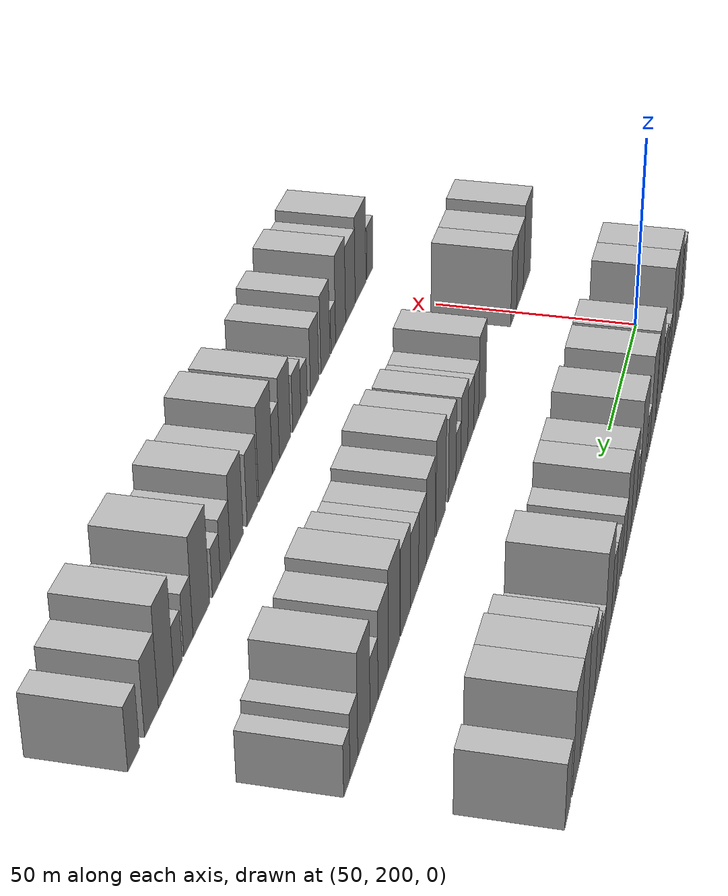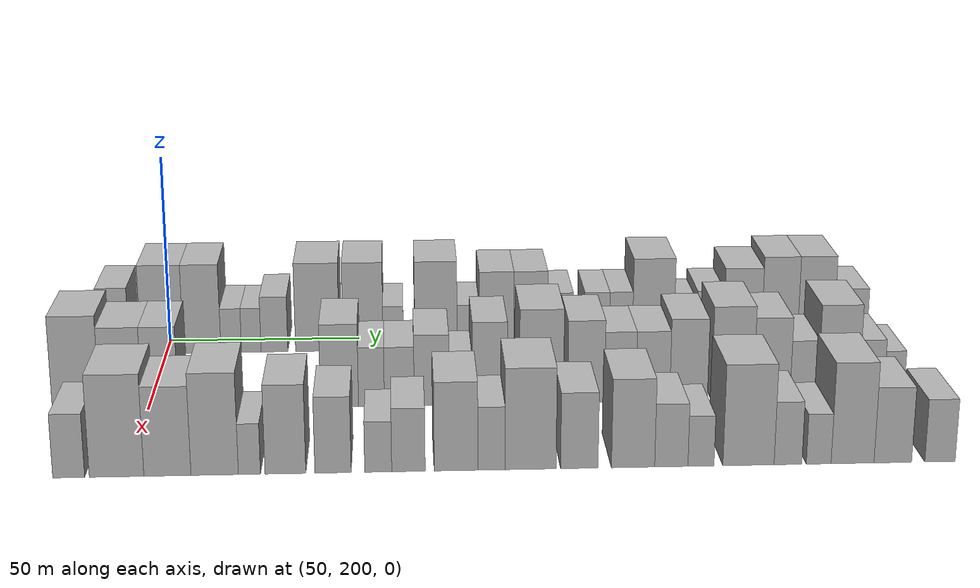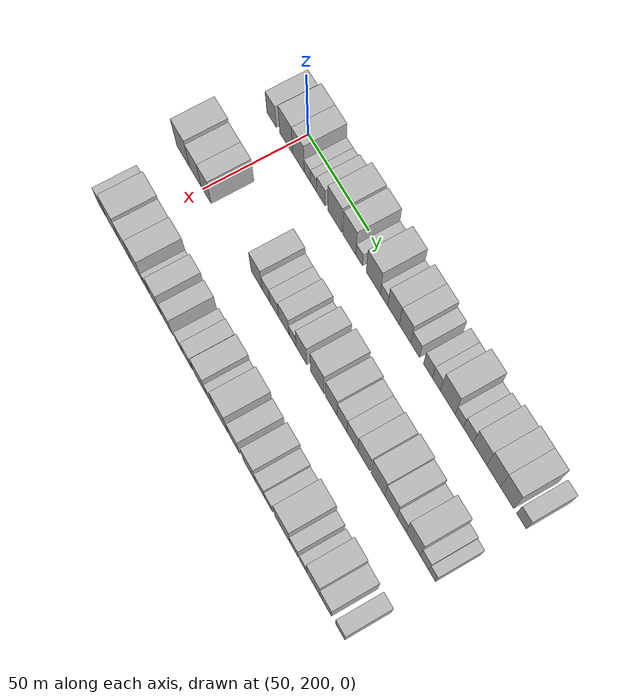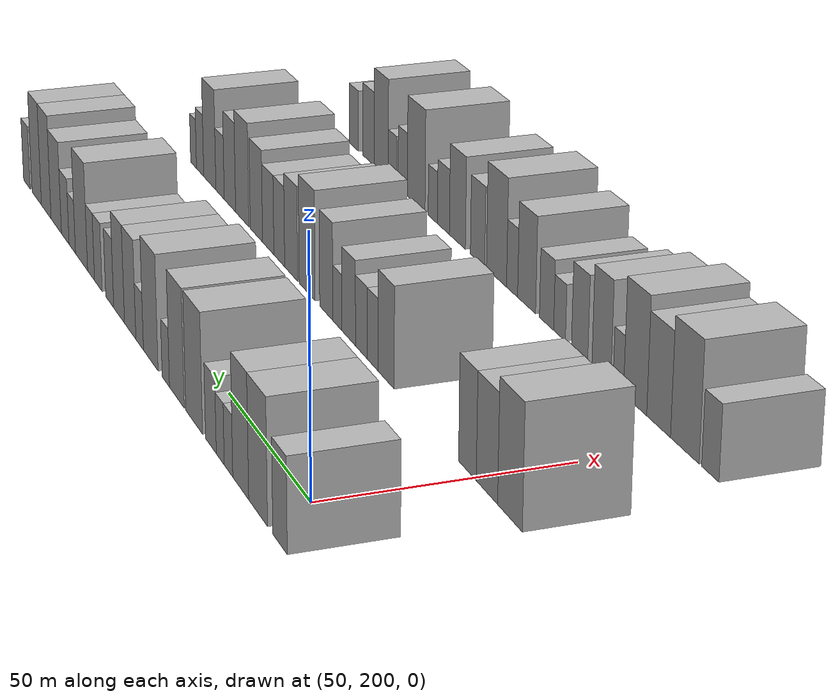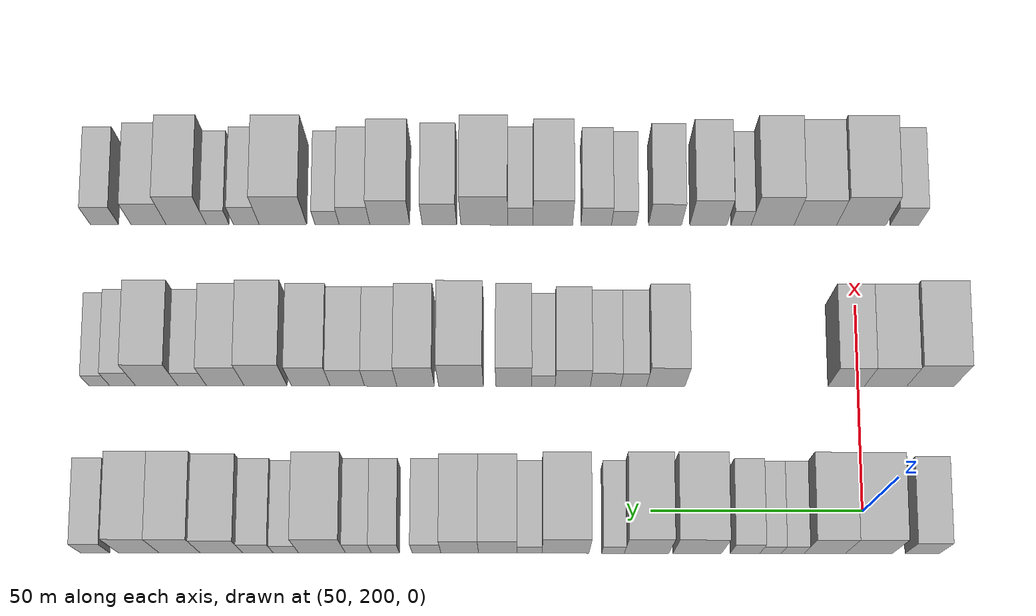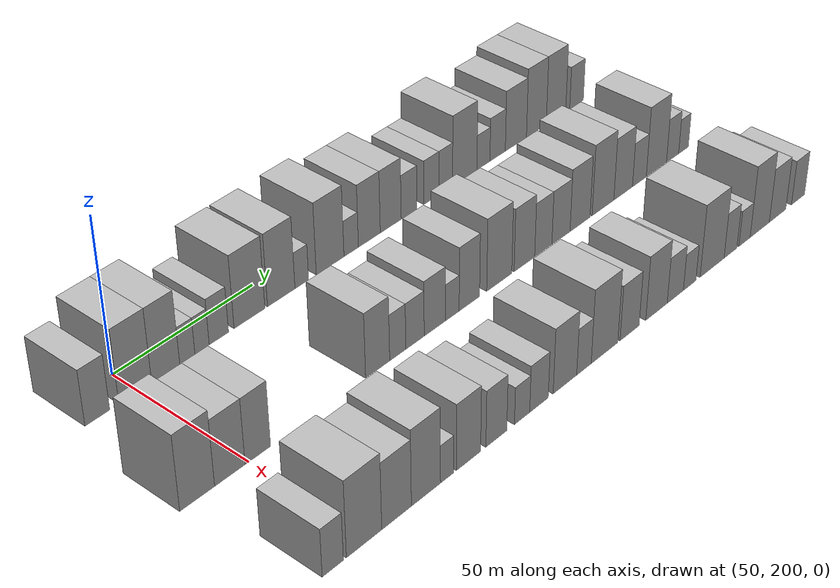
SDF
<sdf version="1.6">
 <world name="default">
  <model name="building_67">
   <static>1</static>
   <pose>50.0000 186.3931 0 0.000000 0.000000 0.000000</pose>
   <link name="link">
    <pose>0 0 9.00 0 0 0</pose>
    <collision name="collision"><geometry><box><size>20.0000 8.0722 18.0000</size></box></geometry></collision>
    <visual name="visual">
     <cast_shadows>0</cast_shadows>
     <geometry><box><size>20.0000 8.0722 18.0000</size></box></geometry>
     <material>
      <script>
       <uri>model://HANNAS_wall/materials/scripts</uri>
       <uri>model://HANNAS_wall/materials/textures</uri>
       <name>vrc/HANNAS_wall</name>
      </script>
     </material>
    </visual>
   </link>
  </model>
  <model name="building_68">
   <static>1</static>
   <pose>50.0000 198.9350 0 0.000000 0.000000 0.000000</pose>
   <link name="link">
    <pose>0 0 12.00 0 0 0</pose>
    <collision name="collision"><geometry><box><size>20.0000 11.0117 24.0000</size></box></geometry></collision>
    <visual name="visual">
     <cast_shadows>0</cast_shadows>
     <geometry><box><size>20.0000 11.0117 24.0000</size></box></geometry>
     <material>
      <script>
       <uri>model://HANNAS_wall/materials/scripts</uri>
       <uri>model://HANNAS_wall/materials/textures</uri>
       <name>vrc/HANNAS_wall</name>
      </script>
     </material>
    </visual>
   </link>
  </model>
  <model name="building_69">
   <static>1</static>
   <pose>50.0000 209.2830 0 0.000000 0.000000 0.000000</pose>
   <link name="link">
    <pose>0 0 12.00 0 0 0</pose>
    <collision name="collision"><geometry><box><size>20.0000 9.6843 24.0000</size></box></geometry></collision>
    <visual name="visual">
     <cast_shadows>0</cast_shadows>
     <geometry><box><size>20.0000 9.6843 24.0000</size></box></geometry>
     <material>
      <script>
       <uri>model://HANNAS_wall/materials/scripts</uri>
       <uri>model://HANNAS_wall/materials/textures</uri>
       <name>vrc/HANNAS_wall</name>
      </script>
     </material>
    </visual>
   </link>
  </model>
  <model name="building_70">
   <static>1</static>
   <pose>50.0000 216.7891 0 0.000000 0.000000 0.000000</pose>
   <link name="link">
    <pose>0 0 6.00 0 0 0</pose>
    <collision name="collision"><geometry><box><size>20.0000 5.3278 12.0000</size></box></geometry></collision>
    <visual name="visual">
     <cast_shadows>0</cast_shadows>
     <geometry><box><size>20.0000 5.3278 12.0000</size></box></geometry>
     <material>
      <script>
       <uri>model://HANNAS_wall/materials/scripts</uri>
       <uri>model://HANNAS_wall/materials/textures</uri>
       <name>vrc/HANNAS_wall</name>
      </script>
     </material>
    </visual>
   </link>
  </model>
  <model name="building_71">
   <static>1</static>
   <pose>50.0000 221.9895 0 0.000000 0.000000 0.000000</pose>
   <link name="link">
    <pose>0 0 6.00 0 0 0</pose>
    <collision name="collision"><geometry><box><size>20.0000 5.0730 12.0000</size></box></geometry></collision>
    <visual name="visual">
     <cast_shadows>0</cast_shadows>
     <geometry><box><size>20.0000 5.0730 12.0000</size></box></geometry>
     <material>
      <script>
       <uri>model://HANNAS_wall/materials/scripts</uri>
       <uri>model://HANNAS_wall/materials/textures</uri>
       <name>vrc/HANNAS_wall</name>
      </script>
     </material>
    </visual>
   </link>
  </model>
  <model name="building_72">
   <static>1</static>
   <pose>50.0000 228.0167 0 0.000000 0.000000 0.000000</pose>
   <link name="link">
    <pose>0 0 7.50 0 0 0</pose>
    <collision name="collision"><geometry><box><size>20.0000 6.9813 15.0000</size></box></geometry></collision>
    <visual name="visual">
     <cast_shadows>0</cast_shadows>
     <geometry><box><size>20.0000 6.9813 15.0000</size></box></geometry>
     <material>
      <script>
       <uri>model://HANNAS_wall/materials/scripts</uri>
       <uri>model://HANNAS_wall/materials/textures</uri>
       <name>vrc/HANNAS_wall</name>
      </script>
     </material>
    </visual>
   </link>
  </model>
  <model name="building_73">
   <static>1</static>
   <pose>50.0000 239.2104 0 0.000000 0.000000 0.000000</pose>
   <link name="link">
    <pose>0 0 12.00 0 0 0</pose>
    <collision name="collision"><geometry><box><size>20.0000 11.4062 24.0000</size></box></geometry></collision>
    <visual name="visual">
     <cast_shadows>0</cast_shadows>
     <geometry><box><size>20.0000 11.4062 24.0000</size></box></geometry>
     <material>
      <script>
       <uri>model://HANNAS_wall/materials/scripts</uri>
       <uri>model://HANNAS_wall/materials/textures</uri>
       <name>vrc/HANNAS_wall</name>
      </script>
     </material>
    </visual>
   </link>
  </model>
  <model name="building_74">
   <static>1</static>
   <pose>50.0000 251.1392 0 0.000000 0.000000 0.000000</pose>
   <link name="link">
    <pose>0 0 12.00 0 0 0</pose>
    <collision name="collision"><geometry><box><size>20.0000 10.4514 24.0000</size></box></geometry></collision>
    <visual name="visual">
     <cast_shadows>0</cast_shadows>
     <geometry><box><size>20.0000 10.4514 24.0000</size></box></geometry>
     <material>
      <script>
       <uri>model://HANNAS_wall/materials/scripts</uri>
       <uri>model://HANNAS_wall/materials/textures</uri>
       <name>vrc/HANNAS_wall</name>
      </script>
     </material>
    </visual>
   </link>
  </model>
  <model name="building_75">
   <static>1</static>
   <pose>50.0000 259.0172 0 0.000000 0.000000 0.000000</pose>
   <link name="link">
    <pose>0 0 6.00 0 0 0</pose>
    <collision name="collision"><geometry><box><size>20.0000 5.3046 12.0000</size></box></geometry></collision>
    <visual name="visual">
     <cast_shadows>0</cast_shadows>
     <geometry><box><size>20.0000 5.3046 12.0000</size></box></geometry>
     <material>
      <script>
       <uri>model://HANNAS_wall/materials/scripts</uri>
       <uri>model://HANNAS_wall/materials/textures</uri>
       <name>vrc/HANNAS_wall</name>
      </script>
     </material>
    </visual>
   </link>
  </model>
  <model name="building_76">
   <static>1</static>
   <pose>50.0000 270.1870 0 0.000000 0.000000 0.000000</pose>
   <link name="link">
    <pose>0 0 12.00 0 0 0</pose>
    <collision name="collision"><geometry><box><size>20.0000 11.0350 24.0000</size></box></geometry></collision>
    <visual name="visual">
     <cast_shadows>0</cast_shadows>
     <geometry><box><size>20.0000 11.0350 24.0000</size></box></geometry>
     <material>
      <script>
       <uri>model://HANNAS_wall/materials/scripts</uri>
       <uri>model://HANNAS_wall/materials/textures</uri>
       <name>vrc/HANNAS_wall</name>
      </script>
     </material>
    </visual>
   </link>
  </model>
  <model name="building_77">
   <static>1</static>
   <pose>50.0000 278.6340 0 0.000000 0.000000 0.000000</pose>
   <link name="link">
    <pose>0 0 6.00 0 0 0</pose>
    <collision name="collision"><geometry><box><size>20.0000 5.8591 12.0000</size></box></geometry></collision>
    <visual name="visual">
     <cast_shadows>0</cast_shadows>
     <geometry><box><size>20.0000 5.8591 12.0000</size></box></geometry>
     <material>
      <script>
       <uri>model://HANNAS_wall/materials/scripts</uri>
       <uri>model://HANNAS_wall/materials/textures</uri>
       <name>vrc/HANNAS_wall</name>
      </script>
     </material>
    </visual>
   </link>
  </model>
  <model name="building_78">
   <static>1</static>
   <pose>50.0000 286.0731 0 0.000000 0.000000 0.000000</pose>
   <link name="link">
    <pose>0 0 10.50 0 0 0</pose>
    <collision name="collision"><geometry><box><size>20.0000 9.0191 21.0000</size></box></geometry></collision>
    <visual name="visual">
     <cast_shadows>0</cast_shadows>
     <geometry><box><size>20.0000 9.0191 21.0000</size></box></geometry>
     <material>
      <script>
       <uri>model://HANNAS_wall/materials/scripts</uri>
       <uri>model://HANNAS_wall/materials/textures</uri>
       <name>vrc/HANNAS_wall</name>
      </script>
     </material>
    </visual>
   </link>
  </model>
  <model name="building_79">
   <static>1</static>
   <pose>50.0000 294.9962 0 0.000000 0.000000 0.000000</pose>
   <link name="link">
    <pose>0 0 10.50 0 0 0</pose>
    <collision name="collision"><geometry><box><size>20.0000 8.8273 21.0000</size></box></geometry></collision>
    <visual name="visual">
     <cast_shadows>0</cast_shadows>
     <geometry><box><size>20.0000 8.8273 21.0000</size></box></geometry>
     <material>
      <script>
       <uri>model://HANNAS_wall/materials/scripts</uri>
       <uri>model://HANNAS_wall/materials/textures</uri>
       <name>vrc/HANNAS_wall</name>
      </script>
     </material>
    </visual>
   </link>
  </model>
  <model name="building_80">
   <static>1</static>
   <pose>50.0000 302.7755 0 0.000000 0.000000 0.000000</pose>
   <link name="link">
    <pose>0 0 7.50 0 0 0</pose>
    <collision name="collision"><geometry><box><size>20.0000 6.7312 15.0000</size></box></geometry></collision>
    <visual name="visual">
     <cast_shadows>0</cast_shadows>
     <geometry><box><size>20.0000 6.7312 15.0000</size></box></geometry>
     <material>
      <script>
       <uri>model://HANNAS_wall/materials/scripts</uri>
       <uri>model://HANNAS_wall/materials/textures</uri>
       <name>vrc/HANNAS_wall</name>
      </script>
     </material>
    </visual>
   </link>
  </model>
  <model name="building_81">
   <static>1</static>
   <pose>50.0000 312.4344 0 0.000000 0.000000 0.000000</pose>
   <link name="link">
    <pose>0 0 7.50 0 0 0</pose>
    <collision name="collision"><geometry><box><size>20.0000 6.5867 15.0000</size></box></geometry></collision>
    <visual name="visual">
     <cast_shadows>0</cast_shadows>
     <geometry><box><size>20.0000 6.5867 15.0000</size></box></geometry>
     <material>
      <script>
       <uri>model://HANNAS_wall/materials/scripts</uri>
       <uri>model://HANNAS_wall/materials/textures</uri>
       <name>vrc/HANNAS_wall</name>
      </script>
     </material>
    </visual>
   </link>
  </model>
  <model name="building_82">
   <static>1</static>
   <pose>50.0000 318.7708 0 0.000000 0.000000 0.000000</pose>
   <link name="link">
    <pose>0 0 7.50 0 0 0</pose>
    <collision name="collision"><geometry><box><size>20.0000 6.0862 15.0000</size></box></geometry></collision>
    <visual name="visual">
     <cast_shadows>0</cast_shadows>
     <geometry><box><size>20.0000 6.0862 15.0000</size></box></geometry>
     <material>
      <script>
       <uri>model://HANNAS_wall/materials/scripts</uri>
       <uri>model://HANNAS_wall/materials/textures</uri>
       <name>vrc/HANNAS_wall</name>
      </script>
     </material>
    </visual>
   </link>
  </model>
  <model name="building_83">
   <static>1</static>
   <pose>50.0000 327.3108 0 0.000000 0.000000 0.000000</pose>
   <link name="link">
    <pose>0 0 12.00 0 0 0</pose>
    <collision name="collision"><geometry><box><size>20.0000 10.9938 24.0000</size></box></geometry></collision>
    <visual name="visual">
     <cast_shadows>0</cast_shadows>
     <geometry><box><size>20.0000 10.9938 24.0000</size></box></geometry>
     <material>
      <script>
       <uri>model://HANNAS_wall/materials/scripts</uri>
       <uri>model://HANNAS_wall/materials/textures</uri>
       <name>vrc/HANNAS_wall</name>
      </script>
     </material>
    </visual>
   </link>
  </model>
  <model name="building_84">
   <static>1</static>
   <pose>50.0000 335.7854 0 0.000000 0.000000 0.000000</pose>
   <link name="link">
    <pose>0 0 6.00 0 0 0</pose>
    <collision name="collision"><geometry><box><size>20.0000 5.9554 12.0000</size></box></geometry></collision>
    <visual name="visual">
     <cast_shadows>0</cast_shadows>
     <geometry><box><size>20.0000 5.9554 12.0000</size></box></geometry>
     <material>
      <script>
       <uri>model://HANNAS_wall/materials/scripts</uri>
       <uri>model://HANNAS_wall/materials/textures</uri>
       <name>vrc/HANNAS_wall</name>
      </script>
     </material>
    </visual>
   </link>
  </model>
  <model name="building_85">
   <static>1</static>
   <pose>50.0000 342.3508 0 0.000000 0.000000 0.000000</pose>
   <link name="link">
    <pose>0 0 7.50 0 0 0</pose>
    <collision name="collision"><geometry><box><size>20.0000 7.1756 15.0000</size></box></geometry></collision>
    <visual name="visual">
     <cast_shadows>0</cast_shadows>
     <geometry><box><size>20.0000 7.1756 15.0000</size></box></geometry>
     <material>
      <script>
       <uri>model://HANNAS_wall/materials/scripts</uri>
       <uri>model://HANNAS_wall/materials/textures</uri>
       <name>vrc/HANNAS_wall</name>
      </script>
     </material>
    </visual>
   </link>
  </model>
  <model name="building_86">
   <static>1</static>
   <pose>50.0000 350.9687 0 0.000000 0.000000 0.000000</pose>
   <link name="link">
    <pose>0 0 10.50 0 0 0</pose>
    <collision name="collision"><geometry><box><size>20.0000 10.0601 21.0000</size></box></geometry></collision>
    <visual name="visual">
     <cast_shadows>0</cast_shadows>
     <geometry><box><size>20.0000 10.0601 21.0000</size></box></geometry>
     <material>
      <script>
       <uri>model://HANNAS_wall/materials/scripts</uri>
       <uri>model://HANNAS_wall/materials/textures</uri>
       <name>vrc/HANNAS_wall</name>
      </script>
     </material>
    </visual>
   </link>
  </model>
  <model name="building_87">
   <static>1</static>
   <pose>50.0000 360.8029 0 0.000000 0.000000 0.000000</pose>
   <link name="link">
    <pose>0 0 12.00 0 0 0</pose>
    <collision name="collision"><geometry><box><size>20.0000 9.6082 24.0000</size></box></geometry></collision>
    <visual name="visual">
     <cast_shadows>0</cast_shadows>
     <geometry><box><size>20.0000 9.6082 24.0000</size></box></geometry>
     <material>
      <script>
       <uri>model://HANNAS_wall/materials/scripts</uri>
       <uri>model://HANNAS_wall/materials/textures</uri>
       <name>vrc/HANNAS_wall</name>
      </script>
     </material>
    </visual>
   </link>
  </model>
  <model name="building_88">
   <static>1</static>
   <pose>50.0000 370.4163 0 0.000000 0.000000 0.000000</pose>
   <link name="link">
    <pose>0 0 12.00 0 0 0</pose>
    <collision name="collision"><geometry><box><size>20.0000 9.6186 24.0000</size></box></geometry></collision>
    <visual name="visual">
     <cast_shadows>0</cast_shadows>
     <geometry><box><size>20.0000 9.6186 24.0000</size></box></geometry>
     <material>
      <script>
       <uri>model://HANNAS_wall/materials/scripts</uri>
       <uri>model://HANNAS_wall/materials/textures</uri>
       <name>vrc/HANNAS_wall</name>
      </script>
     </material>
    </visual>
   </link>
  </model>
  <model name="building_89">
   <static>1</static>
   <pose>50.0000 380.6717 0 0.000000 0.000000 0.000000</pose>
   <link name="link">
    <pose>0 0 7.50 0 0 0</pose>
    <collision name="collision"><geometry><box><size>20.0000 6.8922 15.0000</size></box></geometry></collision>
    <visual name="visual">
     <cast_shadows>0</cast_shadows>
     <geometry><box><size>20.0000 6.8922 15.0000</size></box></geometry>
     <material>
      <script>
       <uri>model://HANNAS_wall/materials/scripts</uri>
       <uri>model://HANNAS_wall/materials/textures</uri>
       <name>vrc/HANNAS_wall</name>
      </script>
     </material>
    </visual>
   </link>
  </model>
  <model name="building_155">
   <static>1</static>
   <pose>90.0000 182.9028 0 0.000000 0.000000 0.000000</pose>
   <link name="link">
    <pose>0 0 12.00 0 0 0</pose>
    <collision name="collision"><geometry><box><size>20.0000 11.2785 24.0000</size></box></geometry></collision>
    <visual name="visual">
     <cast_shadows>0</cast_shadows>
     <geometry><box><size>20.0000 11.2785 24.0000</size></box></geometry>
     <material>
      <script>
       <uri>model://HANNAS_wall/materials/scripts</uri>
       <uri>model://HANNAS_wall/materials/textures</uri>
       <name>vrc/HANNAS_wall</name>
      </script>
     </material>
    </visual>
   </link>
  </model>
  <model name="building_156">
   <static>1</static>
   <pose>90.0000 193.6032 0 0.000000 0.000000 0.000000</pose>
   <link name="link">
    <pose>0 0 10.50 0 0 0</pose>
    <collision name="collision"><geometry><box><size>20.0000 10.1222 21.0000</size></box></geometry></collision>
    <visual name="visual">
     <cast_shadows>0</cast_shadows>
     <geometry><box><size>20.0000 10.1222 21.0000</size></box></geometry>
     <material>
      <script>
       <uri>model://HANNAS_wall/materials/scripts</uri>
       <uri>model://HANNAS_wall/materials/textures</uri>
       <name>vrc/HANNAS_wall</name>
      </script>
     </material>
    </visual>
   </link>
  </model>
  <model name="building_157">
   <static>1</static>
   <pose>90.0000 203.0009 0 0.000000 0.000000 0.000000</pose>
   <link name="link">
    <pose>0 0 10.50 0 0 0</pose>
    <collision name="collision"><geometry><box><size>20.0000 8.6732 21.0000</size></box></geometry></collision>
    <visual name="visual">
     <cast_shadows>0</cast_shadows>
     <geometry><box><size>20.0000 8.6732 21.0000</size></box></geometry>
     <material>
      <script>
       <uri>model://HANNAS_wall/materials/scripts</uri>
       <uri>model://HANNAS_wall/materials/textures</uri>
       <name>vrc/HANNAS_wall</name>
      </script>
     </material>
    </visual>
   </link>
  </model>
  <model name="building_158">
   <static>1</static>
   <pose>90.0000 246.0625 0 0.000000 0.000000 0.000000</pose>
   <link name="link">
    <pose>0 0 10.50 0 0 0</pose>
    <collision name="collision"><geometry><box><size>20.0000 9.1500 21.0000</size></box></geometry></collision>
    <visual name="visual">
     <cast_shadows>0</cast_shadows>
     <geometry><box><size>20.0000 9.1500 21.0000</size></box></geometry>
     <material>
      <script>
       <uri>model://HANNAS_wall/materials/scripts</uri>
       <uri>model://HANNAS_wall/materials/textures</uri>
       <name>vrc/HANNAS_wall</name>
      </script>
     </material>
    </visual>
   </link>
  </model>
  <model name="building_159">
   <static>1</static>
   <pose>90.0000 253.7534 0 0.000000 0.000000 0.000000</pose>
   <link name="link">
    <pose>0 0 7.50 0 0 0</pose>
    <collision name="collision"><geometry><box><size>20.0000 6.2319 15.0000</size></box></geometry></collision>
    <visual name="visual">
     <cast_shadows>0</cast_shadows>
     <geometry><box><size>20.0000 6.2319 15.0000</size></box></geometry>
     <material>
      <script>
       <uri>model://HANNAS_wall/materials/scripts</uri>
       <uri>model://HANNAS_wall/materials/textures</uri>
       <name>vrc/HANNAS_wall</name>
      </script>
     </material>
    </visual>
   </link>
  </model>
  <model name="building_160">
   <static>1</static>
   <pose>90.0000 260.4777 0 0.000000 0.000000 0.000000</pose>
   <link name="link">
    <pose>0 0 7.50 0 0 0</pose>
    <collision name="collision"><geometry><box><size>20.0000 7.2167 15.0000</size></box></geometry></collision>
    <visual name="visual">
     <cast_shadows>0</cast_shadows>
     <geometry><box><size>20.0000 7.2167 15.0000</size></box></geometry>
     <material>
      <script>
       <uri>model://HANNAS_wall/materials/scripts</uri>
       <uri>model://HANNAS_wall/materials/textures</uri>
       <name>vrc/HANNAS_wall</name>
      </script>
     </material>
    </visual>
   </link>
  </model>
  <model name="building_161">
   <static>1</static>
   <pose>90.0000 268.3027 0 0.000000 0.000000 0.000000</pose>
   <link name="link">
    <pose>0 0 9.00 0 0 0</pose>
    <collision name="collision"><geometry><box><size>20.0000 8.4332 18.0000</size></box></geometry></collision>
    <visual name="visual">
     <cast_shadows>0</cast_shadows>
     <geometry><box><size>20.0000 8.4332 18.0000</size></box></geometry>
     <material>
      <script>
       <uri>model://HANNAS_wall/materials/scripts</uri>
       <uri>model://HANNAS_wall/materials/textures</uri>
       <name>vrc/HANNAS_wall</name>
      </script>
     </material>
    </visual>
   </link>
  </model>
  <model name="building_162">
   <static>1</static>
   <pose>90.0000 275.3455 0 0.000000 0.000000 0.000000</pose>
   <link name="link">
    <pose>0 0 6.00 0 0 0</pose>
    <collision name="collision"><geometry><box><size>20.0000 5.6524 12.0000</size></box></geometry></collision>
    <visual name="visual">
     <cast_shadows>0</cast_shadows>
     <geometry><box><size>20.0000 5.6524 12.0000</size></box></geometry>
     <material>
      <script>
       <uri>model://HANNAS_wall/materials/scripts</uri>
       <uri>model://HANNAS_wall/materials/textures</uri>
       <name>vrc/HANNAS_wall</name>
      </script>
     </material>
    </visual>
   </link>
  </model>
  <model name="building_163">
   <static>1</static>
   <pose>90.0000 282.4012 0 0.000000 0.000000 0.000000</pose>
   <link name="link">
    <pose>0 0 10.50 0 0 0</pose>
    <collision name="collision"><geometry><box><size>20.0000 8.4589 21.0000</size></box></geometry></collision>
    <visual name="visual">
     <cast_shadows>0</cast_shadows>
     <geometry><box><size>20.0000 8.4589 21.0000</size></box></geometry>
     <material>
      <script>
       <uri>model://HANNAS_wall/materials/scripts</uri>
       <uri>model://HANNAS_wall/materials/textures</uri>
       <name>vrc/HANNAS_wall</name>
      </script>
     </material>
    </visual>
   </link>
  </model>
  <model name="building_164">
   <static>1</static>
   <pose>90.0000 294.9720 0 0.000000 0.000000 0.000000</pose>
   <link name="link">
    <pose>0 0 12.00 0 0 0</pose>
    <collision name="collision"><geometry><box><size>20.0000 10.6826 24.0000</size></box></geometry></collision>
    <visual name="visual">
     <cast_shadows>0</cast_shadows>
     <geometry><box><size>20.0000 10.6826 24.0000</size></box></geometry>
     <material>
      <script>
       <uri>model://HANNAS_wall/materials/scripts</uri>
       <uri>model://HANNAS_wall/materials/textures</uri>
       <name>vrc/HANNAS_wall</name>
      </script>
     </material>
    </visual>
   </link>
  </model>
  <model name="building_165">
   <static>1</static>
   <pose>90.0000 305.8202 0 0.000000 0.000000 0.000000</pose>
   <link name="link">
    <pose>0 0 10.50 0 0 0</pose>
    <collision name="collision"><geometry><box><size>20.0000 9.0137 21.0000</size></box></geometry></collision>
    <visual name="visual">
     <cast_shadows>0</cast_shadows>
     <geometry><box><size>20.0000 9.0137 21.0000</size></box></geometry>
     <material>
      <script>
       <uri>model://HANNAS_wall/materials/scripts</uri>
       <uri>model://HANNAS_wall/materials/textures</uri>
       <name>vrc/HANNAS_wall</name>
      </script>
     </material>
    </visual>
   </link>
  </model>
  <model name="building_166">
   <static>1</static>
   <pose>90.0000 314.1589 0 0.000000 0.000000 0.000000</pose>
   <link name="link">
    <pose>0 0 9.00 0 0 0</pose>
    <collision name="collision"><geometry><box><size>20.0000 7.6637 18.0000</size></box></geometry></collision>
    <visual name="visual">
     <cast_shadows>0</cast_shadows>
     <geometry><box><size>20.0000 7.6637 18.0000</size></box></geometry>
     <material>
      <script>
       <uri>model://HANNAS_wall/materials/scripts</uri>
       <uri>model://HANNAS_wall/materials/textures</uri>
       <name>vrc/HANNAS_wall</name>
      </script>
     </material>
    </visual>
   </link>
  </model>
  <model name="building_167">
   <static>1</static>
   <pose>90.0000 322.1152 0 0.000000 0.000000 0.000000</pose>
   <link name="link">
    <pose>0 0 9.00 0 0 0</pose>
    <collision name="collision"><geometry><box><size>20.0000 8.2490 18.0000</size></box></geometry></collision>
    <visual name="visual">
     <cast_shadows>0</cast_shadows>
     <geometry><box><size>20.0000 8.2490 18.0000</size></box></geometry>
     <material>
      <script>
       <uri>model://HANNAS_wall/materials/scripts</uri>
       <uri>model://HANNAS_wall/materials/textures</uri>
       <name>vrc/HANNAS_wall</name>
      </script>
     </material>
    </visual>
   </link>
  </model>
  <model name="building_168">
   <static>1</static>
   <pose>90.0000 330.8533 0 0.000000 0.000000 0.000000</pose>
   <link name="link">
    <pose>0 0 10.50 0 0 0</pose>
    <collision name="collision"><geometry><box><size>20.0000 9.2272 21.0000</size></box></geometry></collision>
    <visual name="visual">
     <cast_shadows>0</cast_shadows>
     <geometry><box><size>20.0000 9.2272 21.0000</size></box></geometry>
     <material>
      <script>
       <uri>model://HANNAS_wall/materials/scripts</uri>
       <uri>model://HANNAS_wall/materials/textures</uri>
       <name>vrc/HANNAS_wall</name>
      </script>
     </material>
    </visual>
   </link>
  </model>
  <model name="building_169">
   <static>1</static>
   <pose>90.0000 341.6077 0 0.000000 0.000000 0.000000</pose>
   <link name="link">
    <pose>0 0 12.00 0 0 0</pose>
    <collision name="collision"><geometry><box><size>20.0000 10.2816 24.0000</size></box></geometry></collision>
    <visual name="visual">
     <cast_shadows>0</cast_shadows>
     <geometry><box><size>20.0000 10.2816 24.0000</size></box></geometry>
     <material>
      <script>
       <uri>model://HANNAS_wall/materials/scripts</uri>
       <uri>model://HANNAS_wall/materials/textures</uri>
       <name>vrc/HANNAS_wall</name>
      </script>
     </material>
    </visual>
   </link>
  </model>
  <model name="building_170">
   <static>1</static>
   <pose>90.0000 351.2564 0 0.000000 0.000000 0.000000</pose>
   <link name="link">
    <pose>0 0 10.50 0 0 0</pose>
    <collision name="collision"><geometry><box><size>20.0000 9.0159 21.0000</size></box></geometry></collision>
    <visual name="visual">
     <cast_shadows>0</cast_shadows>
     <geometry><box><size>20.0000 9.0159 21.0000</size></box></geometry>
     <material>
      <script>
       <uri>model://HANNAS_wall/materials/scripts</uri>
       <uri>model://HANNAS_wall/materials/textures</uri>
       <name>vrc/HANNAS_wall</name>
      </script>
     </material>
    </visual>
   </link>
  </model>
  <model name="building_171">
   <static>1</static>
   <pose>90.0000 359.1741 0 0.000000 0.000000 0.000000</pose>
   <link name="link">
    <pose>0 0 7.50 0 0 0</pose>
    <collision name="collision"><geometry><box><size>20.0000 6.8195 15.0000</size></box></geometry></collision>
    <visual name="visual">
     <cast_shadows>0</cast_shadows>
     <geometry><box><size>20.0000 6.8195 15.0000</size></box></geometry>
     <material>
      <script>
       <uri>model://HANNAS_wall/materials/scripts</uri>
       <uri>model://HANNAS_wall/materials/textures</uri>
       <name>vrc/HANNAS_wall</name>
      </script>
     </material>
    </visual>
   </link>
  </model>
  <model name="building_172">
   <static>1</static>
   <pose>90.0000 367.6418 0 0.000000 0.000000 0.000000</pose>
   <link name="link">
    <pose>0 0 12.00 0 0 0</pose>
    <collision name="collision"><geometry><box><size>20.0000 10.1160 24.0000</size></box></geometry></collision>
    <visual name="visual">
     <cast_shadows>0</cast_shadows>
     <geometry><box><size>20.0000 10.1160 24.0000</size></box></geometry>
     <material>
      <script>
       <uri>model://HANNAS_wall/materials/scripts</uri>
       <uri>model://HANNAS_wall/materials/textures</uri>
       <name>vrc/HANNAS_wall</name>
      </script>
     </material>
    </visual>
   </link>
  </model>
  <model name="building_173">
   <static>1</static>
   <pose>90.0000 375.7961 0 0.000000 0.000000 0.000000</pose>
   <link name="link">
    <pose>0 0 7.50 0 0 0</pose>
    <collision name="collision"><geometry><box><size>20.0000 6.1924 15.0000</size></box></geometry></collision>
    <visual name="visual">
     <cast_shadows>0</cast_shadows>
     <geometry><box><size>20.0000 6.1924 15.0000</size></box></geometry>
     <material>
      <script>
       <uri>model://HANNAS_wall/materials/scripts</uri>
       <uri>model://HANNAS_wall/materials/textures</uri>
       <name>vrc/HANNAS_wall</name>
      </script>
     </material>
    </visual>
   </link>
  </model>
  <model name="building_174">
   <static>1</static>
   <pose>90.0000 381.3859 0 0.000000 0.000000 0.000000</pose>
   <link name="link">
    <pose>0 0 6.00 0 0 0</pose>
    <collision name="collision"><geometry><box><size>20.0000 4.9873 12.0000</size></box></geometry></collision>
    <visual name="visual">
     <cast_shadows>0</cast_shadows>
     <geometry><box><size>20.0000 4.9873 12.0000</size></box></geometry>
     <material>
      <script>
       <uri>model://HANNAS_wall/materials/scripts</uri>
       <uri>model://HANNAS_wall/materials/textures</uri>
       <name>vrc/HANNAS_wall</name>
      </script>
     </material>
    </visual>
   </link>
  </model>
  <model name="building_238">
   <static>1</static>
   <pose>130.0000 187.5277 0 0.000000 0.000000 0.000000</pose>
   <link name="link">
    <pose>0 0 7.50 0 0 0</pose>
    <collision name="collision"><geometry><box><size>20.0000 6.9832 15.0000</size></box></geometry></collision>
    <visual name="visual">
     <cast_shadows>0</cast_shadows>
     <geometry><box><size>20.0000 6.9832 15.0000</size></box></geometry>
     <material>
      <script>
       <uri>model://HANNAS_wall/materials/scripts</uri>
       <uri>model://HANNAS_wall/materials/textures</uri>
       <name>vrc/HANNAS_wall</name>
      </script>
     </material>
    </visual>
   </link>
  </model>
  <model name="building_239">
   <static>1</static>
   <pose>130.0000 198.0099 0 0.000000 0.000000 0.000000</pose>
   <link name="link">
    <pose>0 0 12.00 0 0 0</pose>
    <collision name="collision"><geometry><box><size>20.0000 11.9812 24.0000</size></box></geometry></collision>
    <visual name="visual">
     <cast_shadows>0</cast_shadows>
     <geometry><box><size>20.0000 11.9812 24.0000</size></box></geometry>
     <material>
      <script>
       <uri>model://HANNAS_wall/materials/scripts</uri>
       <uri>model://HANNAS_wall/materials/textures</uri>
       <name>vrc/HANNAS_wall</name>
      </script>
     </material>
    </visual>
   </link>
  </model>
  <model name="building_240">
   <static>1</static>
   <pose>130.0000 209.1705 0 0.000000 0.000000 0.000000</pose>
   <link name="link">
    <pose>0 0 10.50 0 0 0</pose>
    <collision name="collision"><geometry><box><size>20.0000 10.3400 21.0000</size></box></geometry></collision>
    <visual name="visual">
     <cast_shadows>0</cast_shadows>
     <geometry><box><size>20.0000 10.3400 21.0000</size></box></geometry>
     <material>
      <script>
       <uri>model://HANNAS_wall/materials/scripts</uri>
       <uri>model://HANNAS_wall/materials/textures</uri>
       <name>vrc/HANNAS_wall</name>
      </script>
     </material>
    </visual>
   </link>
  </model>
  <model name="building_241">
   <static>1</static>
   <pose>130.0000 219.5616 0 0.000000 0.000000 0.000000</pose>
   <link name="link">
    <pose>0 0 12.00 0 0 0</pose>
    <collision name="collision"><geometry><box><size>20.0000 10.4423 24.0000</size></box></geometry></collision>
    <visual name="visual">
     <cast_shadows>0</cast_shadows>
     <geometry><box><size>20.0000 10.4423 24.0000</size></box></geometry>
     <material>
      <script>
       <uri>model://HANNAS_wall/materials/scripts</uri>
       <uri>model://HANNAS_wall/materials/textures</uri>
       <name>vrc/HANNAS_wall</name>
      </script>
     </material>
    </visual>
   </link>
  </model>
  <model name="building_242">
   <static>1</static>
   <pose>130.0000 227.2187 0 0.000000 0.000000 0.000000</pose>
   <link name="link">
    <pose>0 0 6.00 0 0 0</pose>
    <collision name="collision"><geometry><box><size>20.0000 4.8719 12.0000</size></box></geometry></collision>
    <visual name="visual">
     <cast_shadows>0</cast_shadows>
     <geometry><box><size>20.0000 4.8719 12.0000</size></box></geometry>
     <material>
      <script>
       <uri>model://HANNAS_wall/materials/scripts</uri>
       <uri>model://HANNAS_wall/materials/textures</uri>
       <name>vrc/HANNAS_wall</name>
      </script>
     </material>
    </visual>
   </link>
  </model>
  <model name="building_243">
   <static>1</static>
   <pose>130.0000 235.1629 0 0.000000 0.000000 0.000000</pose>
   <link name="link">
    <pose>0 0 10.50 0 0 0</pose>
    <collision name="collision"><geometry><box><size>20.0000 9.0164 21.0000</size></box></geometry></collision>
    <visual name="visual">
     <cast_shadows>0</cast_shadows>
     <geometry><box><size>20.0000 9.0164 21.0000</size></box></geometry>
     <material>
      <script>
       <uri>model://HANNAS_wall/materials/scripts</uri>
       <uri>model://HANNAS_wall/materials/textures</uri>
       <name>vrc/HANNAS_wall</name>
      </script>
     </material>
    </visual>
   </link>
  </model>
  <model name="building_244">
   <static>1</static>
   <pose>130.0000 245.6875 0 0.000000 0.000000 0.000000</pose>
   <link name="link">
    <pose>0 0 9.00 0 0 0</pose>
    <collision name="collision"><geometry><box><size>20.0000 8.0327 18.0000</size></box></geometry></collision>
    <visual name="visual">
     <cast_shadows>0</cast_shadows>
     <geometry><box><size>20.0000 8.0327 18.0000</size></box></geometry>
     <material>
      <script>
       <uri>model://HANNAS_wall/materials/scripts</uri>
       <uri>model://HANNAS_wall/materials/textures</uri>
       <name>vrc/HANNAS_wall</name>
      </script>
     </material>
    </visual>
   </link>
  </model>
  <model name="building_245">
   <static>1</static>
   <pose>130.0000 255.7002 0 0.000000 0.000000 0.000000</pose>
   <link name="link">
    <pose>0 0 6.00 0 0 0</pose>
    <collision name="collision"><geometry><box><size>20.0000 5.9928 12.0000</size></box></geometry></collision>
    <visual name="visual">
     <cast_shadows>0</cast_shadows>
     <geometry><box><size>20.0000 5.9928 12.0000</size></box></geometry>
     <material>
      <script>
       <uri>model://HANNAS_wall/materials/scripts</uri>
       <uri>model://HANNAS_wall/materials/textures</uri>
       <name>vrc/HANNAS_wall</name>
      </script>
     </material>
    </visual>
   </link>
  </model>
  <model name="building_246">
   <static>1</static>
   <pose>130.0000 262.4172 0 0.000000 0.000000 0.000000</pose>
   <link name="link">
    <pose>0 0 7.50 0 0 0</pose>
    <collision name="collision"><geometry><box><size>20.0000 7.4410 15.0000</size></box></geometry></collision>
    <visual name="visual">
     <cast_shadows>0</cast_shadows>
     <geometry><box><size>20.0000 7.4410 15.0000</size></box></geometry>
     <material>
      <script>
       <uri>model://HANNAS_wall/materials/scripts</uri>
       <uri>model://HANNAS_wall/materials/textures</uri>
       <name>vrc/HANNAS_wall</name>
      </script>
     </material>
    </visual>
   </link>
  </model>
  <model name="building_247">
   <static>1</static>
   <pose>130.0000 272.9789 0 0.000000 0.000000 0.000000</pose>
   <link name="link">
    <pose>0 0 10.50 0 0 0</pose>
    <collision name="collision"><geometry><box><size>20.0000 9.6824 21.0000</size></box></geometry></collision>
    <visual name="visual">
     <cast_shadows>0</cast_shadows>
     <geometry><box><size>20.0000 9.6824 21.0000</size></box></geometry>
     <material>
      <script>
       <uri>model://HANNAS_wall/materials/scripts</uri>
       <uri>model://HANNAS_wall/materials/textures</uri>
       <name>vrc/HANNAS_wall</name>
      </script>
     </material>
    </visual>
   </link>
  </model>
  <model name="building_248">
   <static>1</static>
   <pose>130.0000 280.8714 0 0.000000 0.000000 0.000000</pose>
   <link name="link">
    <pose>0 0 7.50 0 0 0</pose>
    <collision name="collision"><geometry><box><size>20.0000 6.1025 15.0000</size></box></geometry></collision>
    <visual name="visual">
     <cast_shadows>0</cast_shadows>
     <geometry><box><size>20.0000 6.1025 15.0000</size></box></geometry>
     <material>
      <script>
       <uri>model://HANNAS_wall/materials/scripts</uri>
       <uri>model://HANNAS_wall/materials/textures</uri>
       <name>vrc/HANNAS_wall</name>
      </script>
     </material>
    </visual>
   </link>
  </model>
  <model name="building_249">
   <static>1</static>
   <pose>130.0000 289.6198 0 0.000000 0.000000 0.000000</pose>
   <link name="link">
    <pose>0 0 12.00 0 0 0</pose>
    <collision name="collision"><geometry><box><size>20.0000 11.3944 24.0000</size></box></geometry></collision>
    <visual name="visual">
     <cast_shadows>0</cast_shadows>
     <geometry><box><size>20.0000 11.3944 24.0000</size></box></geometry>
     <material>
      <script>
       <uri>model://HANNAS_wall/materials/scripts</uri>
       <uri>model://HANNAS_wall/materials/textures</uri>
       <name>vrc/HANNAS_wall</name>
      </script>
     </material>
    </visual>
   </link>
  </model>
  <model name="building_250">
   <static>1</static>
   <pose>130.0000 300.5069 0 0.000000 0.000000 0.000000</pose>
   <link name="link">
    <pose>0 0 9.00 0 0 0</pose>
    <collision name="collision"><geometry><box><size>20.0000 8.3798 18.0000</size></box></geometry></collision>
    <visual name="visual">
     <cast_shadows>0</cast_shadows>
     <geometry><box><size>20.0000 8.3798 18.0000</size></box></geometry>
     <material>
      <script>
       <uri>model://HANNAS_wall/materials/scripts</uri>
       <uri>model://HANNAS_wall/materials/textures</uri>
       <name>vrc/HANNAS_wall</name>
      </script>
     </material>
    </visual>
   </link>
  </model>
  <model name="building_251">
   <static>1</static>
   <pose>130.0000 312.5478 0 0.000000 0.000000 0.000000</pose>
   <link name="link">
    <pose>0 0 10.50 0 0 0</pose>
    <collision name="collision"><geometry><box><size>20.0000 9.7021 21.0000</size></box></geometry></collision>
    <visual name="visual">
     <cast_shadows>0</cast_shadows>
     <geometry><box><size>20.0000 9.7021 21.0000</size></box></geometry>
     <material>
      <script>
       <uri>model://HANNAS_wall/materials/scripts</uri>
       <uri>model://HANNAS_wall/materials/textures</uri>
       <name>vrc/HANNAS_wall</name>
      </script>
     </material>
    </visual>
   </link>
  </model>
  <model name="building_252">
   <static>1</static>
   <pose>130.0000 321.1369 0 0.000000 0.000000 0.000000</pose>
   <link name="link">
    <pose>0 0 7.50 0 0 0</pose>
    <collision name="collision"><geometry><box><size>20.0000 7.4759 15.0000</size></box></geometry></collision>
    <visual name="visual">
     <cast_shadows>0</cast_shadows>
     <geometry><box><size>20.0000 7.4759 15.0000</size></box></geometry>
     <material>
      <script>
       <uri>model://HANNAS_wall/materials/scripts</uri>
       <uri>model://HANNAS_wall/materials/textures</uri>
       <name>vrc/HANNAS_wall</name>
      </script>
     </material>
    </visual>
   </link>
  </model>
  <model name="building_253">
   <static>1</static>
   <pose>130.0000 327.8115 0 0.000000 0.000000 0.000000</pose>
   <link name="link">
    <pose>0 0 6.00 0 0 0</pose>
    <collision name="collision"><geometry><box><size>20.0000 5.8734 12.0000</size></box></geometry></collision>
    <visual name="visual">
     <cast_shadows>0</cast_shadows>
     <geometry><box><size>20.0000 5.8734 12.0000</size></box></geometry>
     <material>
      <script>
       <uri>model://HANNAS_wall/materials/scripts</uri>
       <uri>model://HANNAS_wall/materials/textures</uri>
       <name>vrc/HANNAS_wall</name>
      </script>
     </material>
    </visual>
   </link>
  </model>
  <model name="building_254">
   <static>1</static>
   <pose>130.0000 338.5252 0 0.000000 0.000000 0.000000</pose>
   <link name="link">
    <pose>0 0 12.00 0 0 0</pose>
    <collision name="collision"><geometry><box><size>20.0000 11.5539 24.0000</size></box></geometry></collision>
    <visual name="visual">
     <cast_shadows>0</cast_shadows>
     <geometry><box><size>20.0000 11.5539 24.0000</size></box></geometry>
     <material>
      <script>
       <uri>model://HANNAS_wall/materials/scripts</uri>
       <uri>model://HANNAS_wall/materials/textures</uri>
       <name>vrc/HANNAS_wall</name>
      </script>
     </material>
    </visual>
   </link>
  </model>
  <model name="building_255">
   <static>1</static>
   <pose>130.0000 347.4428 0 0.000000 0.000000 0.000000</pose>
   <link name="link">
    <pose>0 0 7.50 0 0 0</pose>
    <collision name="collision"><geometry><box><size>20.0000 6.2814 15.0000</size></box></geometry></collision>
    <visual name="visual">
     <cast_shadows>0</cast_shadows>
     <geometry><box><size>20.0000 6.2814 15.0000</size></box></geometry>
     <material>
      <script>
       <uri>model://HANNAS_wall/materials/scripts</uri>
       <uri>model://HANNAS_wall/materials/textures</uri>
       <name>vrc/HANNAS_wall</name>
      </script>
     </material>
    </visual>
   </link>
  </model>
  <model name="building_256">
   <static>1</static>
   <pose>130.0000 354.3864 0 0.000000 0.000000 0.000000</pose>
   <link name="link">
    <pose>0 0 6.00 0 0 0</pose>
    <collision name="collision"><geometry><box><size>20.0000 5.6058 12.0000</size></box></geometry></collision>
    <visual name="visual">
     <cast_shadows>0</cast_shadows>
     <geometry><box><size>20.0000 5.6058 12.0000</size></box></geometry>
     <material>
      <script>
       <uri>model://HANNAS_wall/materials/scripts</uri>
       <uri>model://HANNAS_wall/materials/textures</uri>
       <name>vrc/HANNAS_wall</name>
      </script>
     </material>
    </visual>
   </link>
  </model>
  <model name="building_257">
   <static>1</static>
   <pose>130.0000 362.0573 0 0.000000 0.000000 0.000000</pose>
   <link name="link">
    <pose>0 0 12.00 0 0 0</pose>
    <collision name="collision"><geometry><box><size>20.0000 9.7360 24.0000</size></box></geometry></collision>
    <visual name="visual">
     <cast_shadows>0</cast_shadows>
     <geometry><box><size>20.0000 9.7360 24.0000</size></box></geometry>
     <material>
      <script>
       <uri>model://HANNAS_wall/materials/scripts</uri>
       <uri>model://HANNAS_wall/materials/textures</uri>
       <name>vrc/HANNAS_wall</name>
      </script>
     </material>
    </visual>
   </link>
  </model>
  <model name="building_258">
   <static>1</static>
   <pose>130.0000 371.1936 0 0.000000 0.000000 0.000000</pose>
   <link name="link">
    <pose>0 0 9.00 0 0 0</pose>
    <collision name="collision"><geometry><box><size>20.0000 8.5364 18.0000</size></box></geometry></collision>
    <visual name="visual">
     <cast_shadows>0</cast_shadows>
     <geometry><box><size>20.0000 8.5364 18.0000</size></box></geometry>
     <material>
      <script>
       <uri>model://HANNAS_wall/materials/scripts</uri>
       <uri>model://HANNAS_wall/materials/textures</uri>
       <name>vrc/HANNAS_wall</name>
      </script>
     </material>
    </visual>
   </link>
  </model>
  <model name="building_259">
   <static>1</static>
   <pose>130.0000 381.9088 0 0.000000 0.000000 0.000000</pose>
   <link name="link">
    <pose>0 0 7.50 0 0 0</pose>
    <collision name="collision"><geometry><box><size>20.0000 6.8941 15.0000</size></box></geometry></collision>
    <visual name="visual">
     <cast_shadows>0</cast_shadows>
     <geometry><box><size>20.0000 6.8941 15.0000</size></box></geometry>
     <material>
      <script>
       <uri>model://HANNAS_wall/materials/scripts</uri>
       <uri>model://HANNAS_wall/materials/textures</uri>
       <name>vrc/HANNAS_wall</name>
      </script>
     </material>
    </visual>
   </link>
  </model>
 </world>
</sdf>
